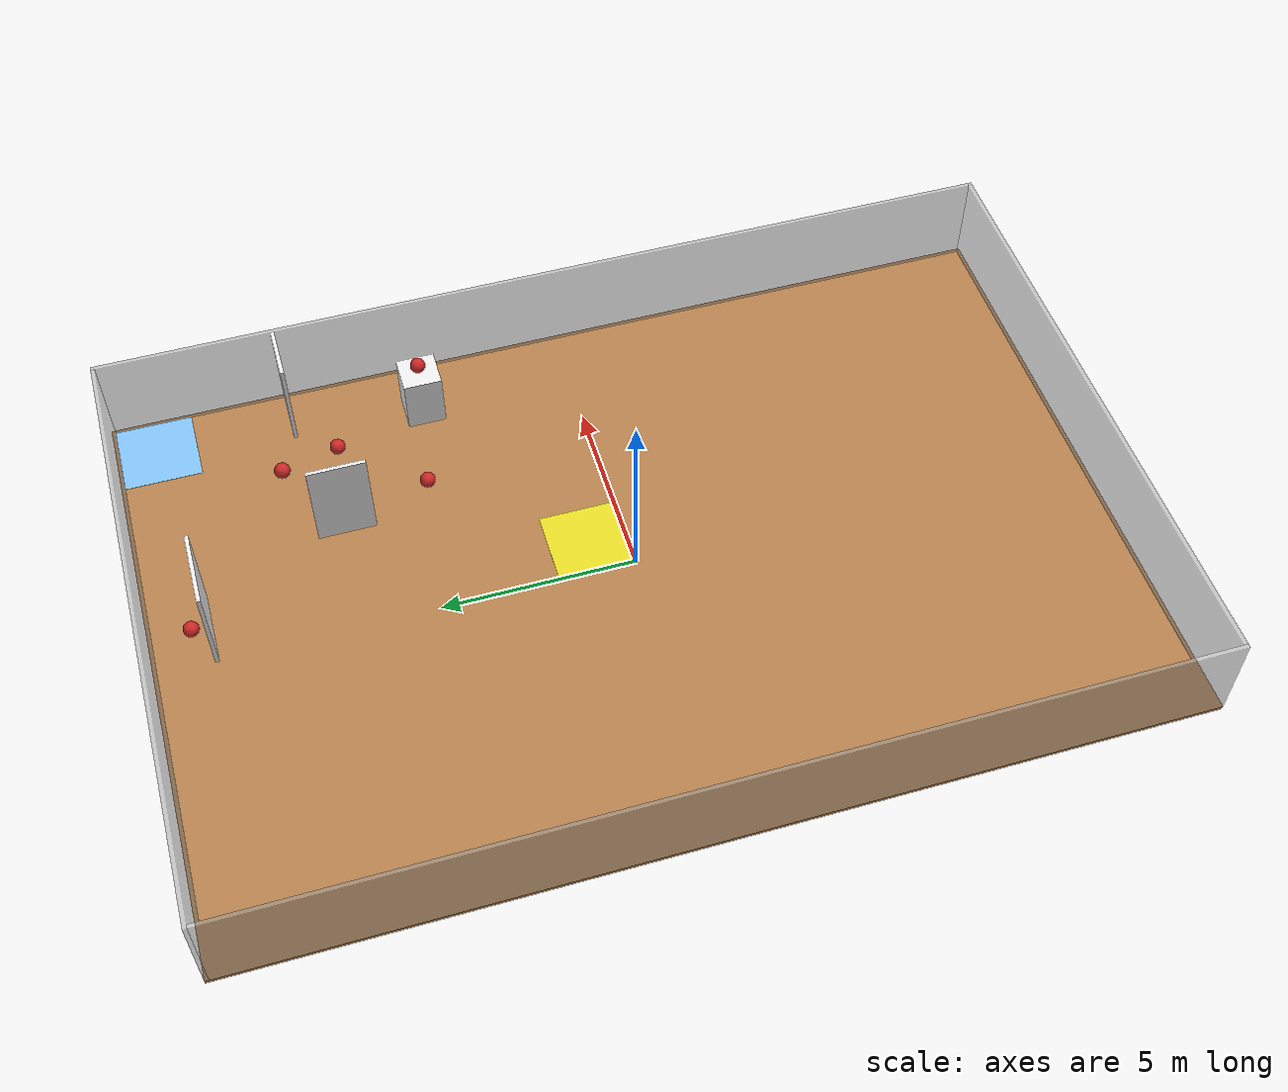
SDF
<?xml version="1.0" ?>
<sdf version="1.5">
  <world name="default">

    <include>
      <uri>model://sun</uri>
    </include>

    <physics name="default_physics" default="0" type="ode">
      <gravity>0 0 -9.8066</gravity>
      <ode>
        <solver>
          <type>quick</type>
          <iters>10</iters>
          <sor>1.3</sor>
          <use_dynamic_moi_rescaling>0</use_dynamic_moi_rescaling>
        </solver>
        <constraints>
          <cfm>0</cfm>
          <erp>0.2</erp>
          <contact_max_correcting_vel>100</contact_max_correcting_vel>
          <contact_surface_layer>0.001</contact_surface_layer>
        </constraints>
      </ode>
      <max_step_size>0.004</max_step_size>
      <real_time_factor>1</real_time_factor>
      <real_time_update_rate>250</real_time_update_rate>
      <magnetic_field>6.0e-6 2.3e-5 -4.2e-5</magnetic_field>
    </physics>

    <model name="box_1">
      <pose>0.05 -12.05 1.25  0 0 0</pose>
      <static>true</static>
      <link name="link">
        <collision name="collision">
          <geometry>
            <box>
              <size>16.1 0.1 2.5 </size>
            </box>
          </geometry>
        </collision>
        <visual name="visual">
          <geometry>
            <box>
              <size>16.1 0.1 2.5 </size>
            </box>
          </geometry>
          <material>
            <script>
              <name>Gazebo/GreyTransparent</name>
              <uri>file://media/materials/scripts/gazebo.material</uri>
            </script>
          </material>
        </visual>
      </link>
    </model>

    <model name="box_2">
      <pose>8.05 0.05 1.25  0 0 0</pose>
      <static>true</static>
      <link name="link">
        <collision name="collision">
          <geometry>
            <box>
              <size>0.1 24.1 2.5 </size>
            </box>
          </geometry>
        </collision>
        <visual name="visual">
          <geometry>
            <box>
              <size>0.1 24.1 2.5 </size>
            </box>
          </geometry>
          <material>
            <script>
              <name>Gazebo/GreyTransparent</name>
              <uri>file://media/materials/scripts/gazebo.material</uri>
            </script>
          </material>
        </visual>
      </link>
    </model>

    <model name="box_3">
      <pose>-0.05 12.05 1.25  0 0 0</pose>
      <static>true</static>
      <link name="link">
        <collision name="collision">
          <geometry>
            <box>
              <size>16.1 0.1 2.5 </size>
            </box>
          </geometry>
        </collision>
        <visual name="visual">
          <geometry>
            <box>
              <size>16.1 0.1 2.5 </size>
            </box>
          </geometry>
          <material>
            <script>
              <name>Gazebo/GreyTransparent</name>
              <uri>file://media/materials/scripts/gazebo.material</uri>
            </script>
          </material>
        </visual>
      </link>
    </model>

    <model name="box_4">
      <pose>-8.05 -0.05 1.25  0 0 0</pose>
      <static>true</static>
      <link name="link">
        <collision name="collision">
          <geometry>
            <box>
              <size>0.1 24.1 2.5 </size>
            </box>
          </geometry>
        </collision>
        <visual name="visual">
          <geometry>
            <box>
              <size>0.1 24.1 2.5 </size>
            </box>
          </geometry>
          <material>
            <script>
              <name>Gazebo/GreyTransparent</name>
              <uri>file://media/materials/scripts/gazebo.material</uri>
            </script>
          </material>
        </visual>
      </link>
    </model>

    <model name="box_5">
      <pose>0.0 0.0 -0.05  0 0 0</pose>
      <static>true</static>
      <link name="link">
        <collision name="collision">
          <geometry>
            <box>
              <size>16.2 24.2 0.1 </size>
            </box>
          </geometry>
        </collision>
        <visual name="visual">
          <geometry>
            <box>
              <size>16.2 24.2 0.1 </size>
            </box>
          </geometry>
          <material>
            <script>
              <name>Gazebo/WoodFloor</name>
              <uri>file://media/materials/scripts/gazebo.material</uri>
            </script>
          </material>
        </visual>
      </link>
    </model>

    <model name="box_6">
      <pose>3.05 6.75 1.25  0 0 0</pose>
      <static>true</static>
      <link name="link">
        <collision name="collision">
          <geometry>
            <box>
              <size>0.1 1.5 2.5 </size>
            </box>
          </geometry>
        </collision>
        <visual name="visual">
          <geometry>
            <box>
              <size>0.1 1.5 2.5 </size>
            </box>
          </geometry>
          <material>
            <script>
              <name>Gazebo/White</name>
              <uri>file://media/materials/scripts/gazebo.material</uri>
            </script>
          </material>
        </visual>
      </link>
    </model>

    <model name="box_7">
      <pose>1.0 10.55 1.25  0 0 0</pose>
      <static>true</static>
      <link name="link">
        <collision name="collision">
          <geometry>
            <box>
              <size>2.0 0.1 2.5 </size>
            </box>
          </geometry>
        </collision>
        <visual name="visual">
          <geometry>
            <box>
              <size>2.0 0.1 2.5 </size>
            </box>
          </geometry>
          <material>
            <script>
              <name>Gazebo/White</name>
              <uri>file://media/materials/scripts/gazebo.material</uri>
            </script>
          </material>
        </visual>
      </link>
    </model>

    <model name="box_8">
      <pose>7.25 7.45 1.25  0 0 0</pose>
      <static>true</static>
      <link name="link">
        <collision name="collision">
          <geometry>
            <box>
              <size>1.5 0.1 2.5 </size>
            </box>
          </geometry>
        </collision>
        <visual name="visual">
          <geometry>
            <box>
              <size>1.5 0.1 2.5 </size>
            </box>
          </geometry>
          <material>
            <script>
              <name>Gazebo/White</name>
              <uri>file://media/materials/scripts/gazebo.material</uri>
            </script>
          </material>
        </visual>
      </link>
    </model>

    <model name="box_9">
      <pose>6.5 4.0 0.75  0 0 0</pose>
      <static>true</static>
      <link name="link">
        <collision name="collision">
          <geometry>
            <box>
              <size>1.0 1.0 1.5 </size>
            </box>
          </geometry>
        </collision>
        <visual name="visual">
          <geometry>
            <box>
              <size>1.0 1.0 1.5 </size>
            </box>
          </geometry>
          <material>
            <script>
              <name>Gazebo/White</name>
              <uri>file://media/materials/scripts/gazebo.material</uri>
            </script>
          </material>
        </visual>
      </link>
    </model>

    <model name="box_10">
      <pose>1.0 1.0 0.005  0 0 0</pose>
      <static>true</static>
      <link name="link">
        <collision name="collision">
          <geometry>
            <box>
              <size>2.0 2.0 0.01 </size>
            </box>
          </geometry>
        </collision>
        <visual name="visual">
          <geometry>
            <box>
              <size>2.0 2.0 0.01 </size>
            </box>
          </geometry>
          <material>
            <script>
              <name>Gazebo/Yellow</name>
              <uri>file://media/materials/scripts/gazebo.material</uri>
            </script>
          </material>
        </visual>
      </link>
    </model>

    <model name="box_11">
      <pose>7.0 11.0 0.005  0 0 0</pose>
      <static>true</static>
      <link name="link">
        <collision name="collision">
          <geometry>
            <box>
              <size>2.0 2.0 0.01 </size>
            </box>
          </geometry>
        </collision>
        <visual name="visual">
          <geometry>
            <box>
              <size>2.0 2.0 0.01 </size>
            </box>
          </geometry>
          <material>
            <script>
              <name>Gazebo/SkyBlue</name>
              <uri>file://media/materials/scripts/gazebo.material</uri>
            </script>
          </material>
        </visual>
      </link>
    </model>

    <model name="sphere_1">
      <pose>3.5 4.5 0.72  0 0 0</pose>
      <static>true</static>
      <link name="link">
        <collision name="collision">
          <geometry>
            <sphere>
              <radius>0.2 </radius>
            </sphere>
          </geometry>
        </collision>
        <visual name="visual">
          <geometry>
            <sphere>
              <radius>0.2 </radius>
            </sphere>
          </geometry>
          <material>
            <script>
              <name>Gazebo/Red</name>
              <uri>file://media/materials/scripts/gazebo.material</uri>
            </script>
          </material>
        </visual>
      </link>
    </model>

    <model name="sphere_2">
      <pose>4 8 1.72  0 0 0</pose>
      <static>true</static>
      <link name="link">
        <collision name="collision">
          <geometry>
            <sphere>
              <radius>0.2 </radius>
            </sphere>
          </geometry>
        </collision>
        <visual name="visual">
          <geometry>
            <sphere>
              <radius>0.2 </radius>
            </sphere>
          </geometry>
          <material>
            <script>
              <name>Gazebo/Red</name>
              <uri>file://media/materials/scripts/gazebo.material</uri>
            </script>
          </material>
        </visual>
      </link>
    </model>

    <model name="sphere_3">
      <pose>5 6.5 1  0 0 0</pose>
      <static>true</static>
      <link name="link">
        <collision name="collision">
          <geometry>
            <sphere>
              <radius>0.2 </radius>
            </sphere>
          </geometry>
        </collision>
        <visual name="visual">
          <geometry>
            <sphere>
              <radius>0.2 </radius>
            </sphere>
          </geometry>
          <material>
            <script>
              <name>Gazebo/Red</name>
              <uri>file://media/materials/scripts/gazebo.material</uri>
            </script>
          </material>
        </visual>
      </link>
    </model>

    <model name="sphere_4">
      <pose>6.5 4 1.72  0 0 0</pose>
      <static>true</static>
      <link name="link">
        <collision name="collision">
          <geometry>
            <sphere>
              <radius>0.2 </radius>
            </sphere>
          </geometry>
        </collision>
        <visual name="visual">
          <geometry>
            <sphere>
              <radius>0.2 </radius>
            </sphere>
          </geometry>
          <material>
            <script>
              <name>Gazebo/Red</name>
              <uri>file://media/materials/scripts/gazebo.material</uri>
            </script>
          </material>
        </visual>
      </link>
    </model>

    <model name="sphere_5">
      <pose>1 11 0.2  0 0 0</pose>
      <static>true</static>
      <link name="link">
        <collision name="collision">
          <geometry>
            <sphere>
              <radius>0.2 </radius>
            </sphere>
          </geometry>
        </collision>
        <visual name="visual">
          <geometry>
            <sphere>
              <radius>0.2 </radius>
            </sphere>
          </geometry>
          <material>
            <script>
              <name>Gazebo/Red</name>
              <uri>file://media/materials/scripts/gazebo.material</uri>
            </script>
          </material>
        </visual>
      </link>
    </model>

  </world>
</sdf>
